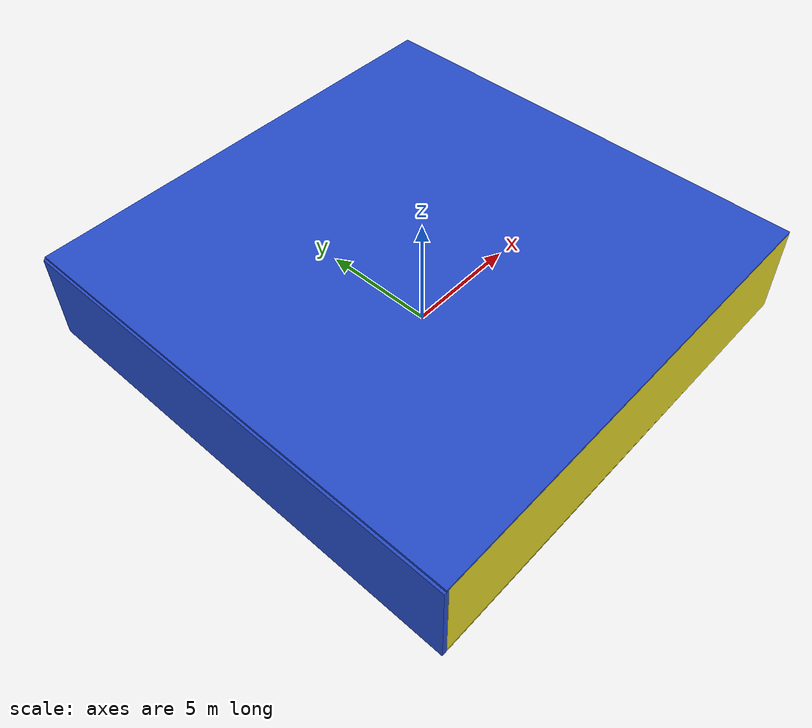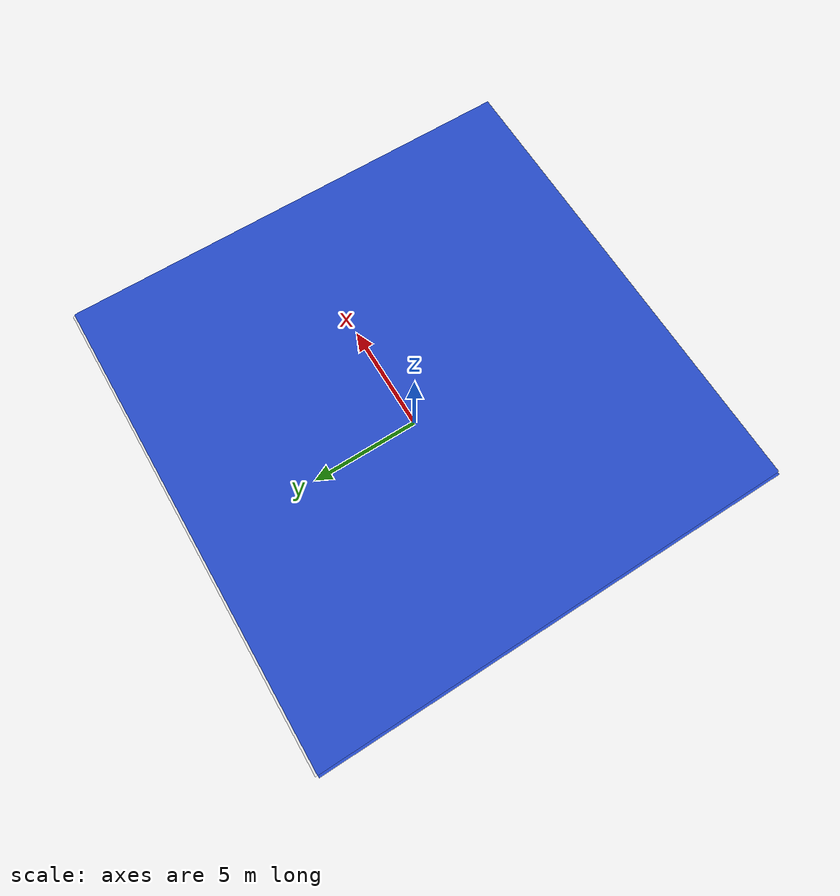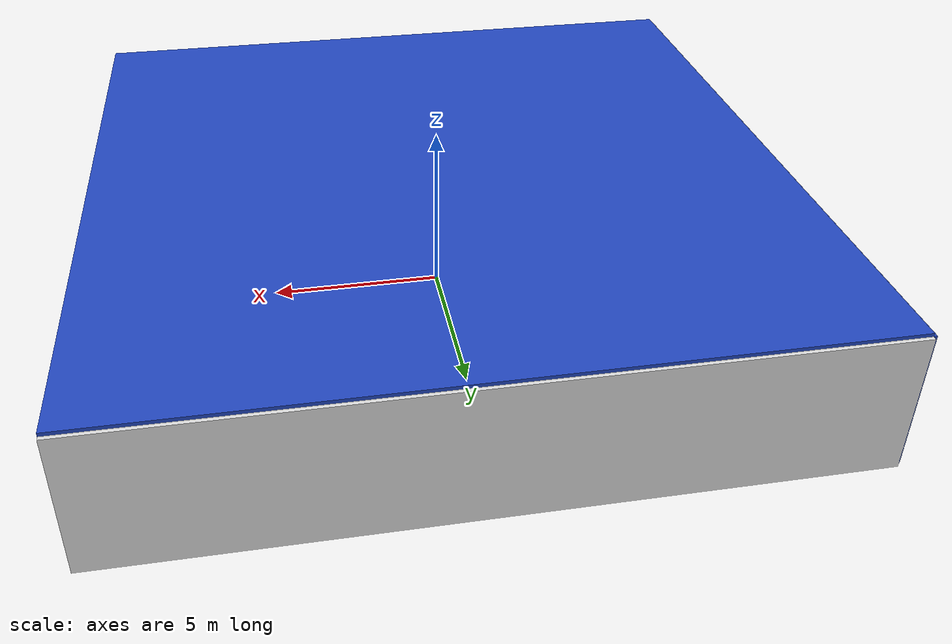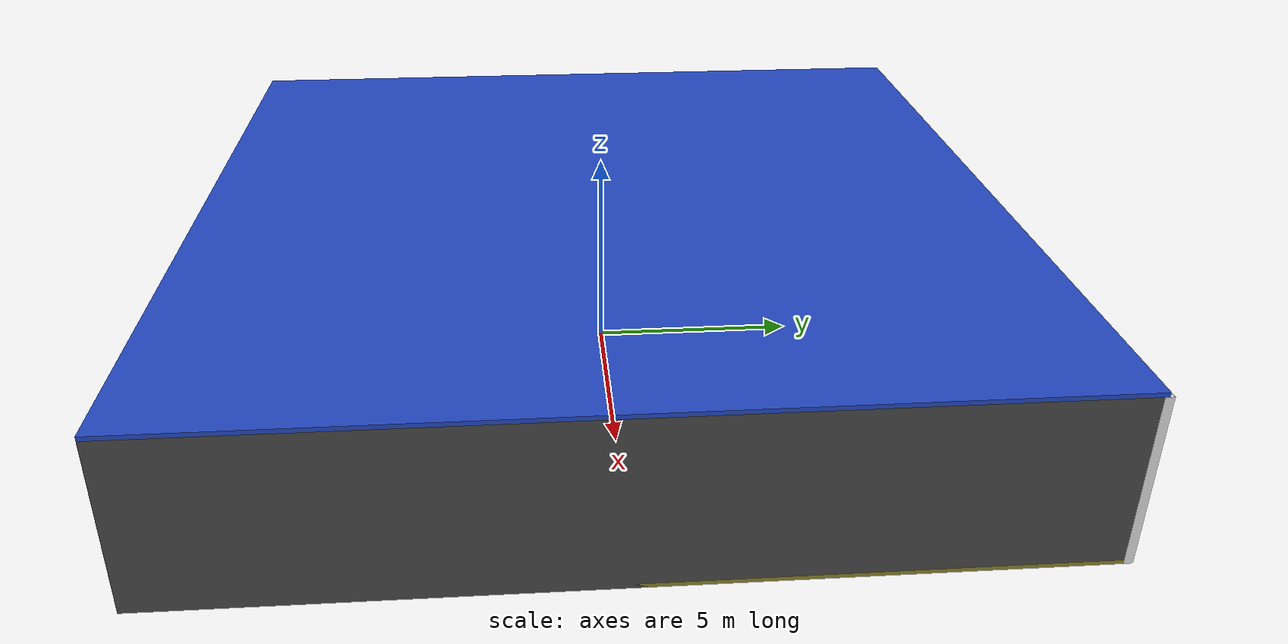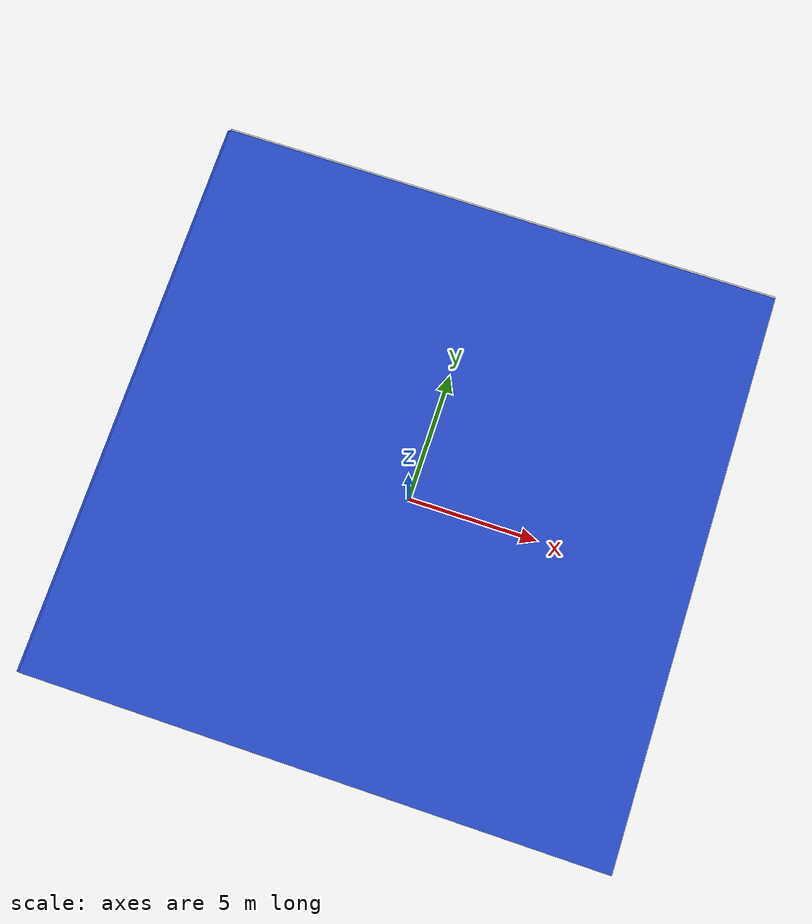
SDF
<sdf version="1.4">
 <world name="default">
  <physics type="ode">
   <max_step_size>0.001</max_step_size>
   <real_time_factor>1</real_time_factor>
   <real_time_update_rate>1000</real_time_update_rate>
   <gravity>0 0 -9.8</gravity>
  </physics>
  <scene><ambient>0.4 0.4 0.4 1</ambient><background>0.7 0.7 0.7 1</background><shadows>1</shadows></scene>
  <model name="Surrounding">
   <static>1</static>
   <link name="Ceiling">
    <collision name="Ceiling_Collision"><geometry><box><size>20 20 0.1</size></box></geometry></collision>
    <visual name="Ceiling_Visual">
     <geometry><box><size>20 20 0.1</size></box></geometry>
     <material>
      <script><uri>file://media/materials/scripts/gazebo.material</uri><name>Gazebo/BlueGlow</name></script>
     </material>
    </visual>
    <pose>0 0 4.05 0 0 0</pose>
   </link>
   <link name="Wall_South">
    <collision name="Wall_South_Collision">
     <geometry><box><size>20 0 4</size></box></geometry>
     <pose>0 0 2 0 -0 0</pose>
    </collision>
    <visual name="Wall_South_Visual">
     <pose>0 0 2 0 -0 0</pose>
     <geometry><box><size>20 0 4</size></box></geometry>
     <material>
      <script><uri>file://media/materials/scripts/gazebo.material</uri><name>Gazebo/Yellow</name></script>
     </material>
    </visual>
    <velocity_decay><linear>0</linear><angular>0</angular></velocity_decay>
    <pose>0 -10 0 0 -0 0</pose>
   </link>
   <link name="Wall_East">
    <collision name="Wall_21_Collision">
     <geometry><box><size>20 0 4</size></box></geometry>
     <pose>0 0 2 0 -0 0</pose>
    </collision>
    <visual name="Wall_21_Visual">
     <pose>0 0 2 0 -0 0</pose>
     <geometry><box><size>20 0 4</size></box></geometry>
     <material>
      <script><uri>file://media/materials/scripts/gazebo.material</uri><name>Gazebo/Road</name></script>
     </material>
    </visual>
    <velocity_decay><linear>0</linear><angular>0</angular></velocity_decay>
    <pose>10 0 0 0 -0 1.5708</pose>
   </link>
   <link name="Wall_North">
    <collision name="Wall_22_Collision">
     <geometry><box><size>20 0.2 4</size></box></geometry>
     <pose>0 0 2 0 -0 0</pose>
    </collision>
    <visual name="Wall_22_Visual">
     <pose>0 0 2 0 -0 0</pose>
     <geometry><box><size>20 0.2 4</size></box></geometry>
     <material>
      <script><uri>file://media/materials/scripts/gazebo.material</uri><name>Gazebo/WhiteGlow</name></script>
     </material>
    </visual>
    <velocity_decay><linear>0</linear><angular>0</angular></velocity_decay>
    <pose>0 10 0 0 -0 0</pose>
   </link>
   <link name="Wall_West">
    <collision name="Wall_23_Collision">
     <geometry><box><size>20 0.2 4</size></box></geometry>
     <pose>0 0 2 0 -0 0</pose>
    </collision>
    <visual name="Wall_23_Visual">
     <pose>0 0 2 0 -0 0</pose>
     <geometry><box><size>20 0.2 4</size></box></geometry>
     <material>
      <script><uri>file://media/materials/scripts/gazebo.material</uri><name>Gazebo/BlueLaser</name></script>
     </material>
    </visual>
    <velocity_decay><linear>0</linear><angular>0</angular></velocity_decay>
    <pose>-10 0 0 0 0 -1.5708</pose>
   </link>
   <link name="Ground_link">
    <collision name="collision">
     <pose>0 0 .05 0 -0 0</pose>
     <geometry><box><size>20 20 0.1</size></box></geometry>
    </collision>
    <visual name="visual">
     <pose>0 0 .05 0 -0 0</pose>
     <geometry><box><size>20 20 0.1</size></box></geometry>
     <material>
      <script>
       <uri>file://media/materials/scripts/gazebo.material</uri>
       <name>Gazebo/YellowTransparent</name>
      </script>
     </material>
    </visual>
   </link>
   <static>1</static>
  </model>
  <spherical_coordinates>
   <surface_model>EARTH_WGS84</surface_model>
   <latitude_deg>0</latitude_deg>
   <longitude_deg>0</longitude_deg>
   <elevation>0</elevation>
   <heading_deg>0</heading_deg>
  </spherical_coordinates>
  <light name="lightball_0" type="diffuse">
   <diffuse>0.8 0.8 0.8 1</diffuse>
   <specular>0.2 0.2 0.2 1</specular>
   <attenuation>
    <range>100</range>
    <constant>0.7</constant>
    <linear>0.01</linear>
    <quadratic>0.001</quadratic>
   </attenuation>
   <direction>-0.5 0.1 -0.9</direction>
   <pose>2.89883144484 8.60337224215 3.54701425893 0 0 0</pose>
  </light>
  <light name="lightball_1" type="diffuse">
   <diffuse>0.8 0.8 0.8 1</diffuse>
   <specular>0.2 0.2 0.2 1</specular>
   <attenuation>
    <range>100</range>
    <constant>0.7</constant>
    <linear>0.01</linear>
    <quadratic>0.001</quadratic>
   </attenuation>
   <direction>-0.5 0.1 -0.9</direction>
   <pose>-1.41685352352 8.46337791924 0.91242955194 0 0 0</pose>
  </light>
  <light name="lightball_2" type="diffuse">
   <diffuse>0.8 0.8 0.8 1</diffuse>
   <specular>0.2 0.2 0.2 1</specular>
   <attenuation>
    <range>100</range>
    <constant>0.7</constant>
    <linear>0.01</linear>
    <quadratic>0.001</quadratic>
   </attenuation>
   <direction>-0.5 0.1 -0.9</direction>
   <pose>5.6797668356 -7.35277823551 1.23988954149 0 0 0</pose>
  </light>
  <light name="lightball_3" type="diffuse">
   <diffuse>0.8 0.8 0.8 1</diffuse>
   <specular>0.2 0.2 0.2 1</specular>
   <attenuation>
    <range>100</range>
    <constant>0.7</constant>
    <linear>0.01</linear>
    <quadratic>0.001</quadratic>
   </attenuation>
   <direction>-0.5 0.1 -0.9</direction>
   <pose>7.01778168373 3.66133685232 0.655641928622 0 0 0</pose>
  </light>
  <light name="lightball_4" type="diffuse">
   <diffuse>0.8 0.8 0.8 1</diffuse>
   <specular>0.2 0.2 0.2 1</specular>
   <attenuation>
    <range>100</range>
    <constant>0.7</constant>
    <linear>0.01</linear>
    <quadratic>0.001</quadratic>
   </attenuation>
   <direction>-0.5 0.1 -0.9</direction>
   <pose>7.70462441667 0.742505867937 0.606162040007 0 0 0</pose>
  </light>
  <light name="lightball_5" type="diffuse">
   <diffuse>0.8 0.8 0.8 1</diffuse>
   <specular>0.2 0.2 0.2 1</specular>
   <attenuation>
    <range>100</range>
    <constant>0.7</constant>
    <linear>0.01</linear>
    <quadratic>0.001</quadratic>
   </attenuation>
   <direction>-0.5 0.1 -0.9</direction>
   <pose>-2.72759380725 -3.38412354566 3.29608070351 0 0 0</pose>
  </light>
  <light name="lightball_6" type="diffuse">
   <diffuse>0.8 0.8 0.8 1</diffuse>
   <specular>0.2 0.2 0.2 1</specular>
   <attenuation>
    <range>100</range>
    <constant>0.7</constant>
    <linear>0.01</linear>
    <quadratic>0.001</quadratic>
   </attenuation>
   <direction>-0.5 0.1 -0.9</direction>
   <pose>8.42024640712 -1.77031949395 2.30759271552 0 0 0</pose>
  </light>
  <light name="lightball_7" type="diffuse">
   <diffuse>0.8 0.8 0.8 1</diffuse>
   <specular>0.2 0.2 0.2 1</specular>
   <attenuation>
    <range>100</range>
    <constant>0.7</constant>
    <linear>0.01</linear>
    <quadratic>0.001</quadratic>
   </attenuation>
   <direction>-0.5 0.1 -0.9</direction>
   <pose>-5.84891060437 0.78889058838 2.84566305698 0 0 0</pose>
  </light>
  <light name="lightball_8" type="diffuse">
   <diffuse>0.8 0.8 0.8 1</diffuse>
   <specular>0.2 0.2 0.2 1</specular>
   <attenuation>
    <range>100</range>
    <constant>0.7</constant>
    <linear>0.01</linear>
    <quadratic>0.001</quadratic>
   </attenuation>
   <direction>-0.5 0.1 -0.9</direction>
   <pose>6.8800675342 0.376289869156 3.78053387201 0 0 0</pose>
  </light>
  <light name="lightball_9" type="diffuse">
   <diffuse>0.8 0.8 0.8 1</diffuse>
   <specular>0.2 0.2 0.2 1</specular>
   <attenuation>
    <range>100</range>
    <constant>0.7</constant>
    <linear>0.01</linear>
    <quadratic>0.001</quadratic>
   </attenuation>
   <direction>-0.5 0.1 -0.9</direction>
   <pose>7.27717884873 -7.86391881639 3.06263561834 0 0 0</pose>
  </light>
  <light name="lightball_10" type="diffuse">
   <diffuse>0.8 0.8 0.8 1</diffuse>
   <specular>0.2 0.2 0.2 1</specular>
   <attenuation>
    <range>100</range>
    <constant>0.7</constant>
    <linear>0.01</linear>
    <quadratic>0.001</quadratic>
   </attenuation>
   <direction>-0.5 0.1 -0.9</direction>
   <pose>-2.47571810721 9.3499189786 3.4409615426 0 0 0</pose>
  </light>
  <include><uri>model://cabinet</uri><pose>-4.80625874417 7.71835617205 0 0 0 2.79768585604</pose></include>
  <include><uri>model://table</uri><pose>-0.330407888006 -5.69426932742 0 0 0 0.449112575712</pose></include>
  <include><uri>model://table</uri><pose>-0.679883256243 -0.64816328824 0 0 0 2.40995607143</pose></include>
  <include>
   <uri>model://construction_cone</uri>
   <pose>-1.37688014489 0.994076038089 0 0 0 1.45828668951</pose>
  </include>
  <include>
   <uri>model://construction_cone</uri>
   <pose>2.0107111695 8.18247923995 0 0 0 0.760858836488</pose>
  </include>
  <include><uri>model://cabinet</uri><pose>4.98823481695 3.74181082981 0 0 0 0.957225398185</pose></include>
 </world>
</sdf>

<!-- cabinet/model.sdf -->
<sdf version="1.5">
  <model name="cabinet">
    <static>true</static>
    <link name="cabinet_bottom_plate">
      <inertial>
        <pose>0 0 -1 0 0 0</pose>
        <inertia>
          <ixx>2.050000</ixx>
          <ixy>0</ixy>
          <ixz>0</ixz>
          <iyy>2.050000</iyy>
          <iyz>0</iyz>
          <izz>2.050000</izz>
        </inertia>
        <mass>25.000000</mass>
      </inertial>
      <collision name="cabinet_bottom_plate_geom">
        <pose>0 0 0.010000 0 0 0</pose>
        <geometry>
          <box>
            <size>0.450000 0.450000 0.020000</size>
          </box>
        </geometry>
      </collision>
      <visual name="cabinet_bottom_plate_geom_visual">
        <pose>0 0 0.010000 0 0 0</pose>
        <geometry>
          <box>
            <size>0.450000 0.450000 0.020000</size>
          </box>
        </geometry>
        <material>
          <script>
            <uri>model://media/materials/scripts/gazebo.material</uri>
            <name>Gazebo/Wood</name>
          </script>
        </material>
      </visual>
      <collision name="cabinet_bottom_plate_geom_cabinet_back_plate">
        <pose>0.235000 0 0.510000 0 0 0</pose>
        <geometry>
          <box>
            <size>0.020000 0.450000 1.020000</size>
          </box>
        </geometry>
      </collision>
      <visual name="cabinet_bottom_plate_geom_cabinet_back_plate_visual">
        <pose>0.235000 0 0.510000 0 0 0</pose>
        <geometry>
          <box>
            <size>0.020000 0.450000 1.020000</size>
          </box>
        </geometry>
        <material>
          <script>
            <uri>model://media/materials/scripts/gazebo.material</uri>
            <name>Gazebo/Wood</name>
          </script>
        </material>
      </visual>
      <collision name="cabinet_bottom_plate_geom_cabinet_left_plate">
        <pose>0 0.235000 0.510000 0 0 0</pose>
        <geometry>
          <box>
            <size>0.450000 0.020000 1.020000</size>
          </box>
        </geometry>
      </collision>
      <visual name="cabinet_bottom_plate_geom_cabinet_left_plate_visual">
        <pose>0 0.235000 0.510000 0 0 0</pose>
        <geometry>
          <box>
            <size>0.450000 0.020000 1.020000</size>
          </box>
        </geometry>
        <material>
          <script>
            <uri>model://media/materials/scripts/gazebo.material</uri>
            <name>Gazebo/Wood</name>
          </script>
        </material>
      </visual>
      <collision name="cabinet_bottom_plate_geom_cabinet_middle_plate">
        <pose>0 0 0.510000 0 0 0</pose>
        <geometry>
          <box>
            <size>0.450000 0.450000 0.020000</size>
          </box>
        </geometry>
      </collision>
      <visual name="cabinet_bottom_plate_geom_cabinet_middle_plate_visual">
        <pose>0 0 0.510000 0 0 0</pose>
        <geometry>
          <box>
            <size>0.450000 0.450000 0.020000</size>
          </box>
        </geometry>
        <material>
          <script>
            <uri>model://media/materials/scripts/gazebo.material</uri>
            <name>Gazebo/Wood</name>
          </script>
        </material>
      </visual>
      <collision name="cabinet_bottom_plate_geom_cabinet_right_plate">
        <pose>0 -0.235000 0.510000 0 0 0</pose>
        <geometry>
          <box>
            <size>0.450000 0.020000 1.020000</size>
          </box>
        </geometry>
      </collision>
      <visual name="cabinet_bottom_plate_geom_cabinet_right_plate_visual">
        <pose>0 -0.235000 0.510000 0 0 0</pose>
        <geometry>
          <box>
            <size>0.450000 0.020000 1.020000</size>
          </box>
        </geometry>
        <material>
          <script>
            <uri>model://media/materials/scripts/gazebo.material</uri>
            <name>Gazebo/Wood</name>
          </script>
        </material>
      </visual>
      <collision name="cabinet_bottom_plate_geom_cabinet_top_plate">
        <pose>0 0 1.010000 0 0 0</pose>
        <geometry>
          <box>
            <size>0.450000 0.450000 0.020000</size>
          </box>
        </geometry>
      </collision>
      <visual name="cabinet_bottom_plate_geom_cabinet_top_plate_visual">
        <pose>0 0 1.010000 0 0 0</pose>
        <geometry>
          <box>
            <size>0.450000 0.450000 0.020000</size>
          </box>
        </geometry>
        <material>
          <script>
            <uri>model://media/materials/scripts/gazebo.material</uri>
            <name>Gazebo/Wood</name>
          </script>
        </material>
      </visual>
    </link>
  </model>
</sdf>

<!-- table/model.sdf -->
<sdf version="1.5">
  <model name="table">
    <static>true</static>
    <link name="link">
      <collision name="surface">
        <pose>0 0 1.0 0 0 0</pose>
        <geometry>
          <box>
            <size>1.5 0.8 0.03</size>
          </box>
        </geometry>
        <surface>
          <friction>
            <ode>
              <mu>0.6</mu>
              <mu2>0.6</mu2>
            </ode>
          </friction>
        </surface>
      </collision>
      <visual name="visual1">
        <pose>0 0 1.0 0 0 0</pose>
        <geometry>
          <box>
            <size>1.5 0.8 0.03</size>
          </box>
        </geometry>
        <material>
          <script>
            <uri>model://media/materials/scripts/gazebo.material</uri>
            <name>Gazebo/Wood</name>
          </script>
        </material>
      </visual>
      <collision name="front_left_leg">
        <pose>0.68 0.38 0.5 0 0 0</pose>
        <geometry>
          <cylinder>
            <radius>0.02</radius>
            <length>1.0</length>
          </cylinder>
        </geometry>
      </collision>
      <visual name="front_left_leg">
        <pose>0.68 0.38 0.5 0 0 0</pose>
        <geometry>
          <cylinder>
            <radius>0.02</radius>
            <length>1.0</length>
          </cylinder>
        </geometry>
        <material>
          <script>
            <uri>model://media/materials/scripts/gazebo.material</uri>
            <name>Gazebo/Grey</name>
          </script>
        </material>
      </visual>
      <collision name="front_right_leg">
        <pose>0.68 -0.38 0.5 0 0 0</pose>
        <geometry>
          <cylinder>
            <radius>0.02</radius>
            <length>1.0</length>
          </cylinder>
        </geometry>
      </collision>
      <visual name="front_right_leg">
        <pose>0.68 -0.38 0.5 0 0 0</pose>
        <geometry>
          <cylinder>
            <radius>0.02</radius>
            <length>1.0</length>
          </cylinder>
        </geometry>
        <material>
          <script>
            <uri>model://media/materials/scripts/gazebo.material</uri>
            <name>Gazebo/Grey</name>
          </script>
        </material>
      </visual>
      <collision name="back_right_leg">
        <pose>-0.68 -0.38 0.5 0 0 0</pose>
        <geometry>
          <cylinder>
            <radius>0.02</radius>
            <length>1.0</length>
          </cylinder>
        </geometry>
      </collision>
      <visual name="back_right_leg">
        <pose>-0.68 -0.38 0.5 0 0 0</pose>
        <geometry>
          <cylinder>
            <radius>0.02</radius>
            <length>1.0</length>
          </cylinder>
        </geometry>
        <material>
          <script>
            <uri>model://media/materials/scripts/gazebo.material</uri>
            <name>Gazebo/Grey</name>
          </script>
        </material>
      </visual>
      <collision name="back_left_leg">
        <pose>-0.68 0.38 0.5 0 0 0</pose>
        <geometry>
          <cylinder>
            <radius>0.02</radius>
            <length>1.0</length>
          </cylinder>
        </geometry>
      </collision>
      <visual name="back_left_leg">
        <pose>-0.68 0.38 0.5 0 0 0</pose>
        <geometry>
          <cylinder>
            <radius>0.02</radius>
            <length>1.0</length>
          </cylinder>
        </geometry>
        <material>
          <script>
            <uri>model://media/materials/scripts/gazebo.material</uri>
            <name>Gazebo/Grey</name>
          </script>
        </material>
      </visual>
    </link>
  </model>
</sdf>

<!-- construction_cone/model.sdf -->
<sdf version="1.5">
  <model name="Construction Cone">
    <link name="link">
      <collision name="collision">
        <geometry>
          <mesh>
            <scale>10 10 10</scale>
            <uri>file://isr-testbed/construction_cone/meshes/construction_cone.dae</uri>
          </mesh>
        </geometry>
      </collision>
      <visual name="visual">
        <geometry>
          <mesh>
            <scale>10 10 10</scale>
            <uri>file://isr-testbed/construction_cone/meshes/construction_cone.dae</uri>
          </mesh>
        </geometry>
      </visual>
    </link>
  </model>
</sdf>
